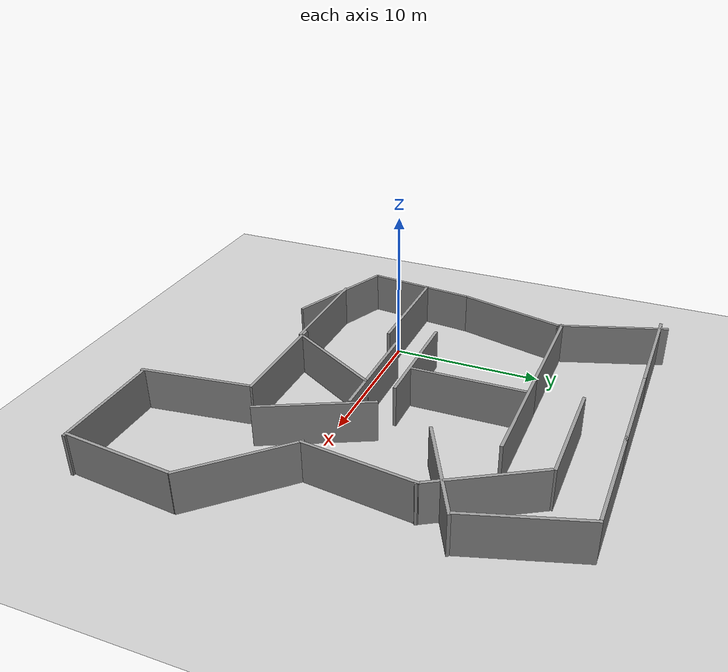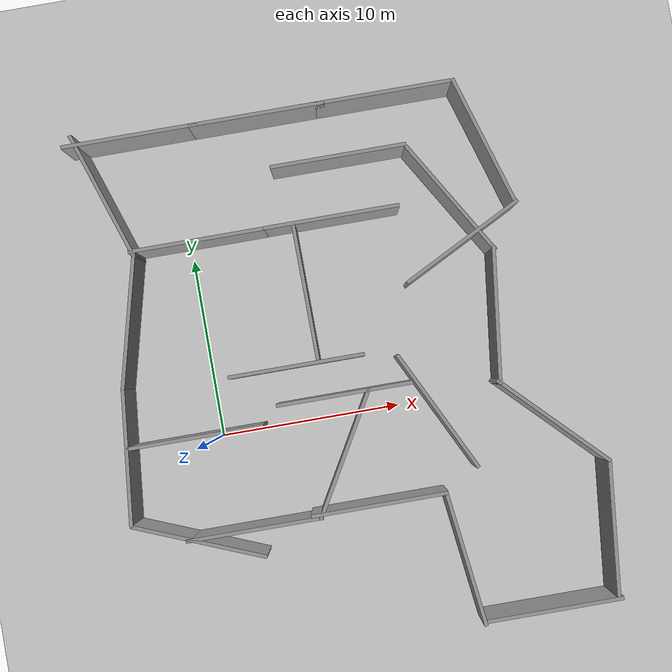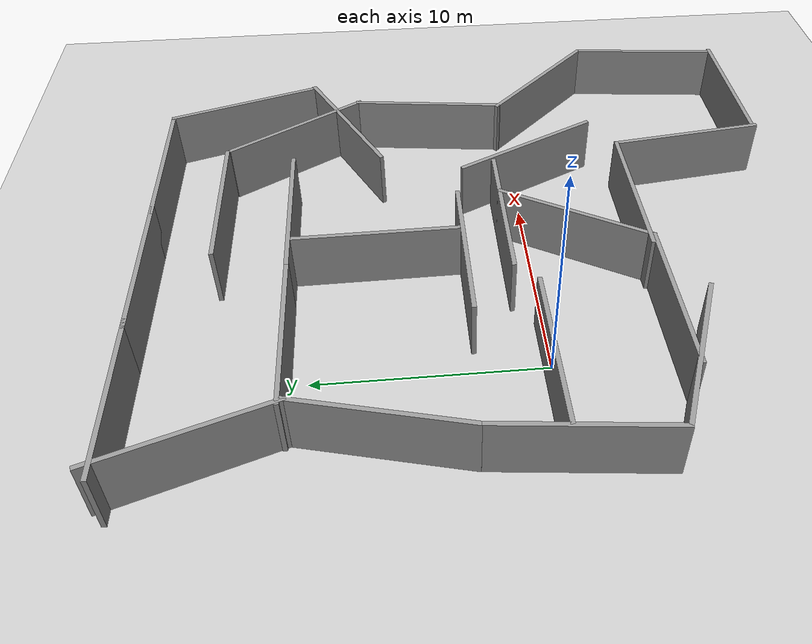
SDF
<sdf version="1.6">
 <world name="default">
  <light name="sun" type="directional">
   <pose>0 0 10 0 -0 0</pose>
   <diffuse>0.8 0.8 0.8 1</diffuse>
   <specular>0.2 0.2 0.2 1</specular>
   <attenuation>
    <range>1000</range>
    <constant>0.9</constant>
    <linear>0.01</linear>
    <quadratic>0.001</quadratic>
   </attenuation>
   <direction>-0.5 0.1 -0.9</direction>
  </light>
  <model name="ground_plane">
   <static>1</static>
   <link name="link">
    <collision name="collision">
     <geometry><plane><normal>0 0 1</normal><size>100 100</size></plane></geometry>
     <surface>
      <contact><collide_bitmask>65535</collide_bitmask></contact>
      <friction><ode><mu>100</mu><mu2>50</mu2></ode></friction>
     </surface>
    </collision>
    <visual name="visual">
     <cast_shadows>0</cast_shadows>
     <geometry><plane><normal>0 0 1</normal><size>100 100</size></plane></geometry>
     <material>
      <script><uri>file://media/materials/scripts/gazebo.material</uri><name>Gazebo/Grey</name></script>
     </material>
    </visual>
   </link>
  </model>
  <physics name="default_physics" default="0" type="ode">
   <real_time_update_rate>1000</real_time_update_rate>
   <max_step_size>0.001</max_step_size>
   <real_time_factor>1</real_time_factor>
   <ode>
    <solver>
     <type>quick</type>
     <iters>150</iters>
     <precon_iters>0</precon_iters>
     <sor>1.4</sor>
     <use_dynamic_moi_rescaling>1</use_dynamic_moi_rescaling>
    </solver>
    <constraints>
     <cfm>1e-05</cfm>
     <erp>0.2</erp>
     <contact_max_correcting_vel>2000</contact_max_correcting_vel>
     <contact_surface_layer>0.01</contact_surface_layer>
    </constraints>
   </ode>
  </physics>
  <scene><ambient>0.4 0.4 0.4 1</ambient><background>0.7 0.7 0.7 1</background><shadows>1</shadows></scene>
  <gravity>0 0 -9.8</gravity>
  <magnetic_field>6e-06 2.3e-05 -4.2e-05</magnetic_field>
  <atmosphere type="adiabatic"/>
  <audio><device>default</device></audio>
  <spherical_coordinates>
   <surface_model>EARTH_WGS84</surface_model>
   <latitude_deg>0</latitude_deg>
   <longitude_deg>0</longitude_deg>
   <elevation>0</elevation>
   <heading_deg>0</heading_deg>
  </spherical_coordinates>
  <model name="grey_wall">
   <static>1</static>
   <link name="link">
    <pose>0 0 1.4 0 -0 0</pose>
    <collision name="collision"><geometry><box><size>7.5 0.2 2.8</size></box></geometry></collision>
    <visual name="visual">
     <cast_shadows>0</cast_shadows>
     <geometry><box><size>7.5 0.2 2.8</size></box></geometry>
     <material>
      <script>
       <uri>model://grey_wall/materials/scripts</uri>
       <uri>model://grey_wall/materials/textures</uri>
       <name>vrc/grey_wall</name>
      </script>
     </material>
    </visual>
   </link>
   <pose>1.12931 -5.16494 0 0 -0 0</pose>
  </model>
  <model name="grey_wall_0">
   <static>1</static>
   <link name="link">
    <pose>0 0 1.4 0 -0 0</pose>
    <collision name="collision"><geometry><box><size>7.5 0.2 2.8</size></box></geometry></collision>
    <visual name="visual">
     <cast_shadows>0</cast_shadows>
     <geometry><box><size>7.5 0.2 2.8</size></box></geometry>
     <material>
      <script>
       <uri>model://grey_wall/materials/scripts</uri>
       <uri>model://grey_wall/materials/textures</uri>
       <name>vrc/grey_wall</name>
      </script>
     </material>
    </visual>
   </link>
   <pose>-1.91868 -5.30272 0 0 0 -0.38645</pose>
  </model>
  <model name="grey_wall_1">
   <static>1</static>
   <link name="link">
    <pose>0 0 1.4 0 -0 0</pose>
    <collision name="collision"><geometry><box><size>7.5 0.2 2.8</size></box></geometry></collision>
    <visual name="visual">
     <cast_shadows>0</cast_shadows>
     <geometry><box><size>7.5 0.2 2.8</size></box></geometry>
     <material>
      <script>
       <uri>model://grey_wall/materials/scripts</uri>
       <uri>model://grey_wall/materials/textures</uri>
       <name>vrc/grey_wall</name>
      </script>
     </material>
    </visual>
   </link>
   <pose>-5.01117 -0.254221 0 0 -0 1.4663</pose>
  </model>
  <model name="grey_wall_2">
   <static>1</static>
   <link name="link">
    <pose>0 0 1.4 0 -0 0</pose>
    <collision name="collision"><geometry><box><size>7.5 0.2 2.8</size></box></geometry></collision>
    <visual name="visual">
     <cast_shadows>0</cast_shadows>
     <geometry><box><size>7.5 0.2 2.8</size></box></geometry>
     <material>
      <script>
       <uri>model://grey_wall/materials/scripts</uri>
       <uri>model://grey_wall/materials/textures</uri>
       <name>vrc/grey_wall</name>
      </script>
     </material>
    </visual>
   </link>
   <pose>6.6149 -1.99443 0 0 0 -2.0955</pose>
  </model>
  <model name="grey_wall_3">
   <static>1</static>
   <link name="link">
    <pose>0 0 1.4 0 -0 0</pose>
    <collision name="collision"><geometry><box><size>7.5 0.2 2.8</size></box></geometry></collision>
    <visual name="visual">
     <cast_shadows>0</cast_shadows>
     <geometry><box><size>7.5 0.2 2.8</size></box></geometry>
     <material>
      <script>
       <uri>model://grey_wall/materials/scripts</uri>
       <uri>model://grey_wall/materials/textures</uri>
       <name>vrc/grey_wall</name>
      </script>
     </material>
    </visual>
   </link>
   <pose>-1.20141 0.265486 0 0 -0 0</pose>
  </model>
  <model name="grey_wall_4">
   <static>1</static>
   <link name="link">
    <pose>0 0 1.4 0 -0 0</pose>
    <collision name="collision"><geometry><box><size>7.5 0.2 2.8</size></box></geometry></collision>
    <visual name="visual">
     <cast_shadows>0</cast_shadows>
     <geometry><box><size>7.5 0.2 2.8</size></box></geometry>
     <material>
      <script>
       <uri>model://grey_wall/materials/scripts</uri>
       <uri>model://grey_wall/materials/textures</uri>
       <name>vrc/grey_wall</name>
      </script>
     </material>
    </visual>
   </link>
   <pose>7.1482 1.19753 0 0 -0 0</pose>
  </model>
  <model name="grey_wall_5">
   <static>1</static>
   <link name="link">
    <pose>0 0 1.4 0 -0 0</pose>
    <collision name="collision"><geometry><box><size>7.5 0.2 2.8</size></box></geometry></collision>
    <visual name="visual">
     <cast_shadows>0</cast_shadows>
     <geometry><box><size>7.5 0.2 2.8</size></box></geometry>
     <material>
      <script>
       <uri>model://grey_wall/materials/scripts</uri>
       <uri>model://grey_wall/materials/textures</uri>
       <name>vrc/grey_wall</name>
      </script>
     </material>
    </visual>
   </link>
   <pose>4.82921 3.14508 0 0 -0 0</pose>
  </model>
  <model name="grey_wall_6">
   <static>1</static>
   <link name="link">
    <pose>0 0 1.4 0 -0 0</pose>
    <collision name="collision"><geometry><box><size>7.5 0.2 2.8</size></box></geometry></collision>
    <visual name="visual">
     <cast_shadows>0</cast_shadows>
     <geometry><box><size>7.5 0.2 2.8</size></box></geometry>
     <material>
      <script>
       <uri>model://grey_wall/materials/scripts</uri>
       <uri>model://grey_wall/materials/textures</uri>
       <name>vrc/grey_wall</name>
      </script>
     </material>
    </visual>
   </link>
   <pose>-3.71715 7.07763 0 0 -0 1.32453</pose>
  </model>
  <model name="grey_wall_7">
   <static>1</static>
   <link name="link">
    <pose>0 0 1.4 0 -0 0</pose>
    <collision name="collision"><geometry><box><size>7.5 0.2 2.8</size></box></geometry></collision>
    <visual name="visual">
     <cast_shadows>0</cast_shadows>
     <geometry><box><size>7.5 0.2 2.8</size></box></geometry>
     <material>
      <script>
       <uri>model://grey_wall/materials/scripts</uri>
       <uri>model://grey_wall/materials/textures</uri>
       <name>vrc/grey_wall</name>
      </script>
     </material>
    </visual>
   </link>
   <pose>0.646229 10.7757 0 0 -0 0</pose>
  </model>
  <model name="grey_wall_8">
   <static>1</static>
   <link name="link">
    <pose>0 0 1.4 0 -0 0</pose>
    <collision name="collision"><geometry><box><size>7.5 0.2 2.8</size></box></geometry></collision>
    <visual name="visual">
     <cast_shadows>0</cast_shadows>
     <geometry><box><size>7.5 0.2 2.8</size></box></geometry>
     <material>
      <script>
       <uri>model://grey_wall/materials/scripts</uri>
       <uri>model://grey_wall/materials/textures</uri>
       <name>vrc/grey_wall</name>
      </script>
     </material>
    </visual>
   </link>
   <pose>8.06693 10.7868 0 0 -0 0</pose>
  </model>
  <model name="grey_wall_9">
   <static>1</static>
   <link name="link">
    <pose>0 0 1.4 0 -0 0</pose>
    <collision name="collision"><geometry><box><size>7.5 0.2 2.8</size></box></geometry></collision>
    <visual name="visual">
     <cast_shadows>0</cast_shadows>
     <geometry><box><size>7.5 0.2 2.8</size></box></geometry>
     <material>
      <script>
       <uri>model://grey_wall/materials/scripts</uri>
       <uri>model://grey_wall/materials/textures</uri>
       <name>vrc/grey_wall</name>
      </script>
     </material>
    </visual>
   </link>
   <pose>6 7 0 0 0 -1.5596</pose>
  </model>
  <model name="grey_wall_10">
   <static>1</static>
   <link name="link">
    <pose>0 0 1.4 0 -0 0</pose>
    <collision name="collision"><geometry><box><size>7.5 0.2 2.8</size></box></geometry></collision>
    <visual name="visual">
     <cast_shadows>0</cast_shadows>
     <geometry><box><size>7.5 0.2 2.8</size></box></geometry>
     <material>
      <script>
       <uri>model://grey_wall/materials/scripts</uri>
       <uri>model://grey_wall/materials/textures</uri>
       <name>vrc/grey_wall</name>
      </script>
     </material>
    </visual>
   </link>
   <pose>14.6276 10.6882 0 0 0 -1.03098</pose>
  </model>
  <model name="grey_wall_11">
   <static>1</static>
   <link name="link">
    <pose>0 0 1.4 0 -0 0</pose>
    <collision name="collision"><geometry><box><size>7.5 0.2 2.8</size></box></geometry></collision>
    <visual name="visual">
     <cast_shadows>0</cast_shadows>
     <geometry><box><size>7.5 0.2 2.8</size></box></geometry>
     <material>
      <script>
       <uri>model://grey_wall/materials/scripts</uri>
       <uri>model://grey_wall/materials/textures</uri>
       <name>vrc/grey_wall</name>
      </script>
     </material>
    </visual>
   </link>
   <pose>9 14 0 0 -0 0</pose>
  </model>
  <model name="grey_wall_12">
   <static>1</static>
   <link name="link">
    <pose>0 0 1.4 0 -0 0</pose>
    <collision name="collision"><geometry><box><size>7.5 0.2 2.8</size></box></geometry></collision>
    <visual name="visual">
     <cast_shadows>0</cast_shadows>
     <geometry><box><size>7.5 0.2 2.8</size></box></geometry>
     <material>
      <script>
       <uri>model://grey_wall/materials/scripts</uri>
       <uri>model://grey_wall/materials/textures</uri>
       <name>vrc/grey_wall</name>
      </script>
     </material>
    </visual>
   </link>
   <pose>5 17 0 0 -0 0</pose>
  </model>
  <model name="grey_wall_13">
   <static>1</static>
   <link name="link">
    <pose>0 0 1.4 0 -0 0</pose>
    <collision name="collision"><geometry><box><size>7.5 0.2 2.8</size></box></geometry></collision>
    <visual name="visual">
     <cast_shadows>0</cast_shadows>
     <geometry><box><size>7.5 0.2 2.8</size></box></geometry>
     <material>
      <script>
       <uri>model://grey_wall/materials/scripts</uri>
       <uri>model://grey_wall/materials/textures</uri>
       <name>vrc/grey_wall</name>
      </script>
     </material>
    </visual>
   </link>
   <pose>-2 17 0 0 -0 0</pose>
  </model>
  <model name="grey_wall_14">
   <static>1</static>
   <link name="link">
    <pose>0 0 1.4 0 -0 0</pose>
    <collision name="collision"><geometry><box><size>7.5 0.2 2.8</size></box></geometry></collision>
    <visual name="visual">
     <cast_shadows>0</cast_shadows>
     <geometry><box><size>7.5 0.2 2.8</size></box></geometry>
     <material>
      <script>
       <uri>model://grey_wall/materials/scripts</uri>
       <uri>model://grey_wall/materials/textures</uri>
       <name>vrc/grey_wall</name>
      </script>
     </material>
    </visual>
   </link>
   <pose>-4 14 0 0 0 -1.2499</pose>
  </model>
  <model name="grey_wall_15">
   <static>1</static>
   <link name="link">
    <pose>0 0 1.4 0 -0 0</pose>
    <collision name="collision"><geometry><box><size>7.5 0.2 2.8</size></box></geometry></collision>
    <visual name="visual">
     <cast_shadows>0</cast_shadows>
     <geometry><box><size>7.5 0.2 2.8</size></box></geometry>
     <material>
      <script>
       <uri>model://grey_wall/materials/scripts</uri>
       <uri>model://grey_wall/materials/textures</uri>
       <name>vrc/grey_wall</name>
      </script>
     </material>
    </visual>
   </link>
   <pose>12 17 0 0 -0 0</pose>
  </model>
  <model name="grey_wall_16">
   <static>1</static>
   <link name="link">
    <pose>0 0 1.4 0 -0 0</pose>
    <collision name="collision"><geometry><box><size>7.5 0.2 2.8</size></box></geometry></collision>
    <visual name="visual">
     <cast_shadows>0</cast_shadows>
     <geometry><box><size>7.5 0.2 2.8</size></box></geometry>
     <material>
      <script>
       <uri>model://grey_wall/materials/scripts</uri>
       <uri>model://grey_wall/materials/textures</uri>
       <name>vrc/grey_wall</name>
      </script>
     </material>
    </visual>
   </link>
   <pose>16.9331 13.5043 -0 0 0 -1.27232</pose>
  </model>
  <model name="grey_wall_17">
   <static>1</static>
   <link name="link">
    <pose>0 0 1.4 0 -0 0</pose>
    <collision name="collision"><geometry><box><size>7.5 0.2 2.8</size></box></geometry></collision>
    <visual name="visual">
     <cast_shadows>0</cast_shadows>
     <geometry><box><size>7.5 0.2 2.8</size></box></geometry>
     <material>
      <script>
       <uri>model://grey_wall/materials/scripts</uri>
       <uri>model://grey_wall/materials/textures</uri>
       <name>vrc/grey_wall</name>
      </script>
     </material>
    </visual>
   </link>
   <pose>8 -5 0 0 -0 0</pose>
  </model>
  <model name="grey_wall_18">
   <static>1</static>
   <link name="link">
    <pose>0 0 1.4 0 -0 0</pose>
    <collision name="collision"><geometry><box><size>7.5 0.2 2.8</size></box></geometry></collision>
    <visual name="visual">
     <cast_shadows>0</cast_shadows>
     <geometry><box><size>7.5 0.2 2.8</size></box></geometry>
     <material>
      <script>
       <uri>model://grey_wall/materials/scripts</uri>
       <uri>model://grey_wall/materials/textures</uri>
       <name>vrc/grey_wall</name>
      </script>
     </material>
    </visual>
   </link>
   <pose>14.855 8.24749 0 0 -0 0.471607</pose>
  </model>
  <model name="grey_wall_19">
   <static>1</static>
   <link name="link">
    <pose>0 0 1.4 0 -0 0</pose>
    <collision name="collision"><geometry><box><size>7.5 0.2 2.8</size></box></geometry></collision>
    <visual name="visual">
     <cast_shadows>0</cast_shadows>
     <geometry><box><size>7.5 0.2 2.8</size></box></geometry>
     <material>
      <script>
       <uri>model://grey_wall/materials/scripts</uri>
       <uri>model://grey_wall/materials/textures</uri>
       <name>vrc/grey_wall</name>
      </script>
     </material>
    </visual>
   </link>
   <pose>16 4 0 0 0 -1.69556</pose>
  </model>
  <model name="grey_wall_20">
   <static>1</static>
   <link name="link">
    <pose>0 0 1.4 0 -0 0</pose>
    <collision name="collision"><geometry><box><size>7.5 0.2 2.8</size></box></geometry></collision>
    <visual name="visual">
     <cast_shadows>0</cast_shadows>
     <geometry><box><size>7.5 0.2 2.8</size></box></geometry>
     <material>
      <script>
       <uri>model://grey_wall/materials/scripts</uri>
       <uri>model://grey_wall/materials/textures</uri>
       <name>vrc/grey_wall</name>
      </script>
     </material>
    </visual>
   </link>
   <pose>18.0281 -2.14612 0 0 0 -0.789432</pose>
  </model>
  <model name="grey_wall_21">
   <static>1</static>
   <link name="link">
    <pose>0 0 1.4 0 -0 0</pose>
    <collision name="collision"><geometry><box><size>7.5 0.2 2.8</size></box></geometry></collision>
    <visual name="visual">
     <cast_shadows>0</cast_shadows>
     <geometry><box><size>7.5 0.2 2.8</size></box></geometry>
     <material>
      <script>
       <uri>model://grey_wall/materials/scripts</uri>
       <uri>model://grey_wall/materials/textures</uri>
       <name>vrc/grey_wall</name>
      </script>
     </material>
    </visual>
   </link>
   <pose>12.0859 -8.6571 0 0 0 -1.45042</pose>
  </model>
  <model name="grey_wall_22">
   <static>1</static>
   <link name="link">
    <pose>0 0 1.4 0 -0 0</pose>
    <collision name="collision"><geometry><box><size>7.5 0.2 2.8</size></box></geometry></collision>
    <visual name="visual">
     <cast_shadows>0</cast_shadows>
     <geometry><box><size>7.5 0.2 2.8</size></box></geometry>
     <material>
      <script>
       <uri>model://grey_wall/materials/scripts</uri>
       <uri>model://grey_wall/materials/textures</uri>
       <name>vrc/grey_wall</name>
      </script>
     </material>
    </visual>
   </link>
   <pose>16.3295 -12.1624 0 0 -0 0</pose>
  </model>
  <model name="grey_wall_23">
   <static>1</static>
   <link name="link">
    <pose>0 0 1.4 0 -0 0</pose>
    <collision name="collision"><geometry><box><size>7.5 0.2 2.8</size></box></geometry></collision>
    <visual name="visual">
     <cast_shadows>0</cast_shadows>
     <geometry><box><size>7.5 0.2 2.8</size></box></geometry>
     <material>
      <script>
       <uri>model://grey_wall/materials/scripts</uri>
       <uri>model://grey_wall/materials/textures</uri>
       <name>vrc/grey_wall</name>
      </script>
     </material>
    </visual>
   </link>
   <pose>20.2119 -8.52591 0 0 0 -1.67812</pose>
  </model>
  <model name="grey_wall_24">
   <static>1</static>
   <link name="link">
    <pose>0 0 1.4 0 -0 0</pose>
    <collision name="collision"><geometry><box><size>7.5 0.2 2.8</size></box></geometry></collision>
    <visual name="visual">
     <cast_shadows>0</cast_shadows>
     <geometry><box><size>7.5 0.2 2.8</size></box></geometry>
     <material>
      <script>
       <uri>model://grey_wall/materials/scripts</uri>
       <uri>model://grey_wall/materials/textures</uri>
       <name>vrc/grey_wall</name>
      </script>
     </material>
    </visual>
   </link>
   <pose>11.9614 -0.579806 0 0 0 -1.11473</pose>
  </model>
 </world>
</sdf>
